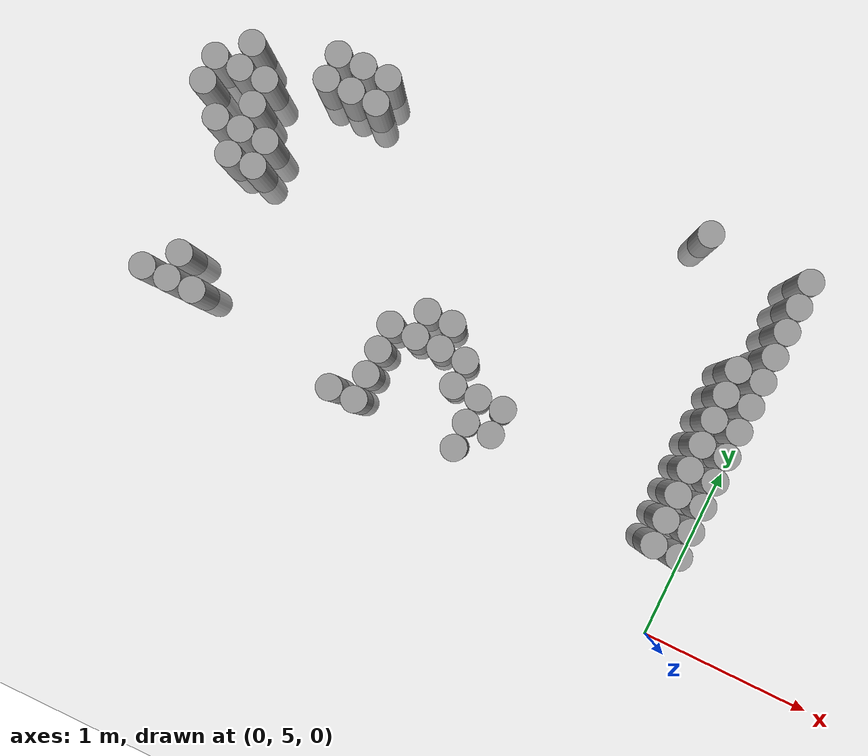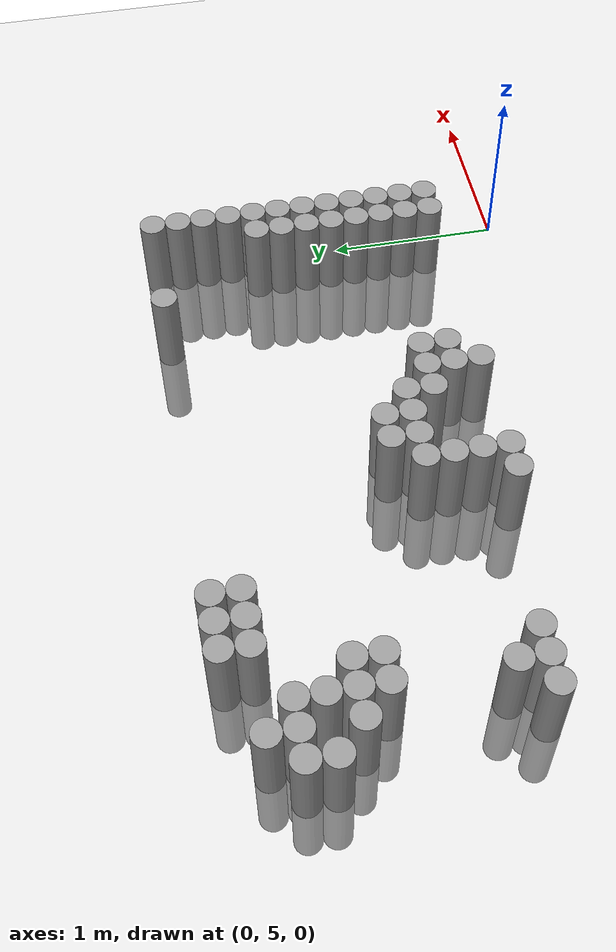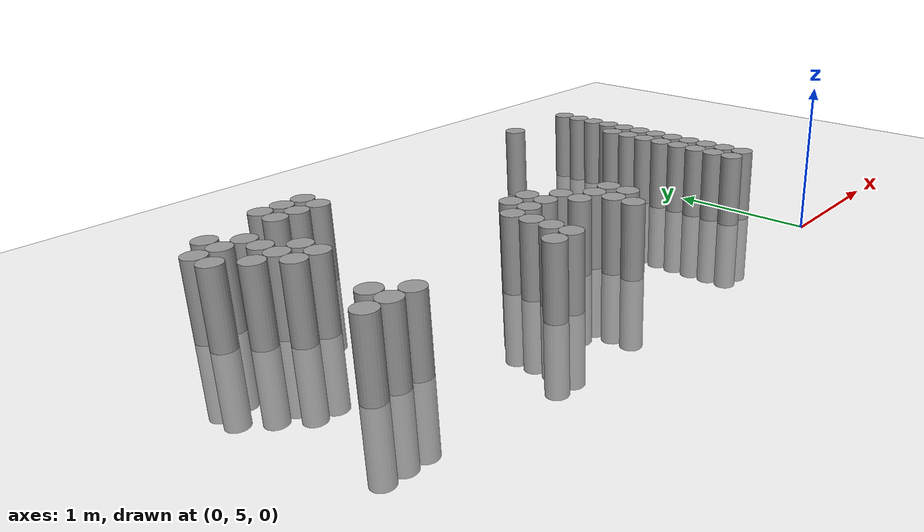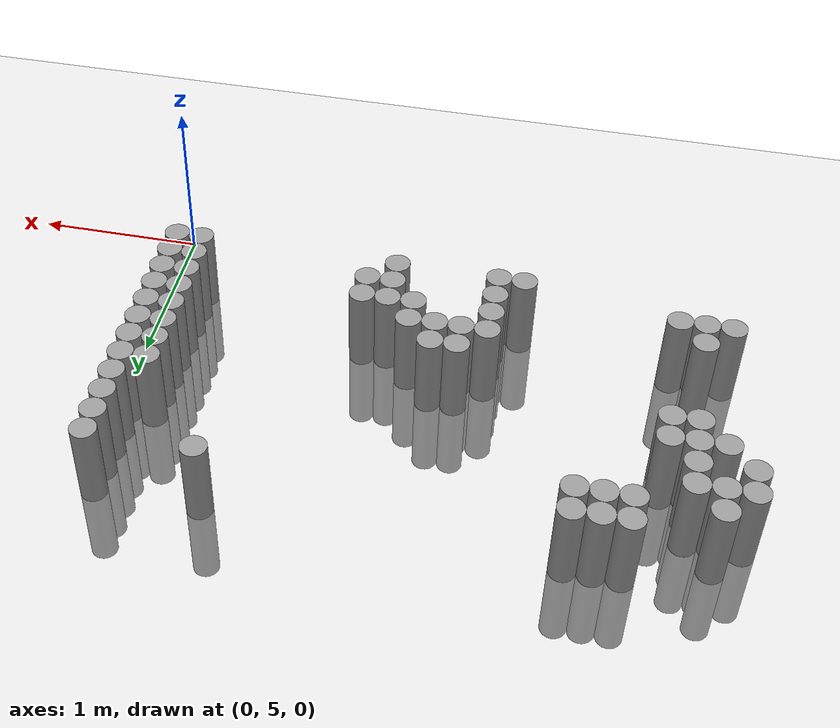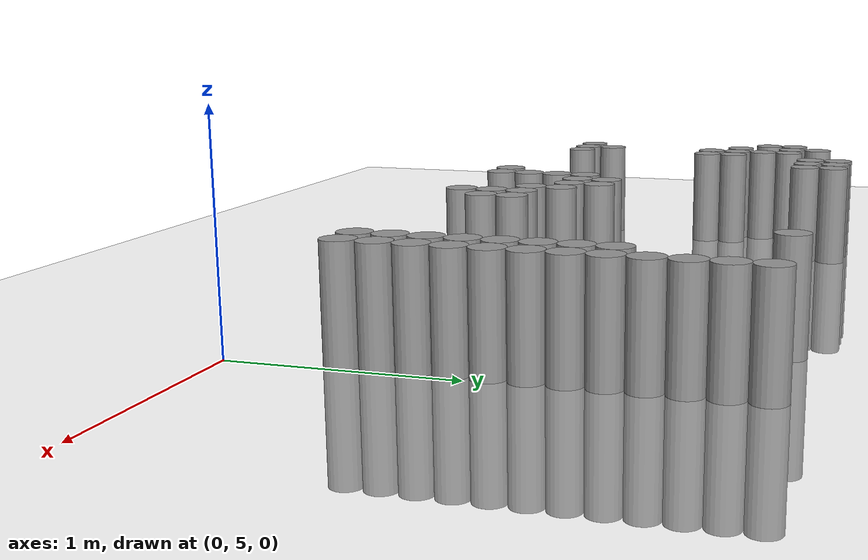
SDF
<sdf version="1.6">
 <world name="default">
  <model name="ground_plane">
   <static>1</static>
   <static>1</static>
   <link name="link">
    <collision name="collision">
     <geometry><plane><normal>0 0 1</normal><size>100 100</size></plane></geometry>
     <surface><friction><ode><mu>100</mu><mu2>50</mu2></ode></friction></surface>
    </collision>
    <visual name="visual">
     <cast_shadows>0</cast_shadows>
     <geometry><plane><normal>0 0 1</normal><size>100 100</size></plane></geometry>
     <material>
      <script><uri>file://media/materials/scripts/gazebo.material</uri><name>Gazebo/Grey</name></script>
     </material>
    </visual>
   </link>
  </model>
  <model name="unit_cylinder_164">
   <static>1</static>
   <pose>-3.525000 6.675000 0.000000 0.000000 0.000000 0.000000</pose>
   <link name="link">
    <inertial>
     <mass>1</mass>
     <inertia><ixx>0.145833</ixx><ixy>0</ixy><ixz>0</ixz><iyy>0.145833</iyy><iyz>0</iyz><izz>0.125</izz></inertia>
    </inertial>
    <collision name="collision">
     <geometry><cylinder><radius>0.075000</radius><length>1</length></cylinder></geometry>
    </collision>
    <visual name="visual">
     <geometry><cylinder><radius>0.075000</radius><length>1</length></cylinder></geometry>
     <material>
      <script><name>Gazebo/Grey</name><uri>file://media/materials/scripts/gazebo.material</uri></script>
     </material>
    </visual>
   </link>
  </model>
  <model name="unit_cylinder_165">
   <static>1</static>
   <pose>-3.525000 6.825000 0.000000 0.000000 0.000000 0.000000</pose>
   <link name="link">
    <inertial>
     <mass>1</mass>
     <inertia><ixx>0.145833</ixx><ixy>0</ixy><ixz>0</ixz><iyy>0.145833</iyy><iyz>0</iyz><izz>0.125</izz></inertia>
    </inertial>
    <collision name="collision">
     <geometry><cylinder><radius>0.075000</radius><length>1</length></cylinder></geometry>
    </collision>
    <visual name="visual">
     <geometry><cylinder><radius>0.075000</radius><length>1</length></cylinder></geometry>
     <material>
      <script><name>Gazebo/Grey</name><uri>file://media/materials/scripts/gazebo.material</uri></script>
     </material>
    </visual>
   </link>
  </model>
  <model name="unit_cylinder_168">
   <static>1</static>
   <pose>-3.375000 5.625000 0.000000 0.000000 0.000000 0.000000</pose>
   <link name="link">
    <inertial>
     <mass>1</mass>
     <inertia><ixx>0.145833</ixx><ixy>0</ixy><ixz>0</ixz><iyy>0.145833</iyy><iyz>0</iyz><izz>0.125</izz></inertia>
    </inertial>
    <collision name="collision">
     <geometry><cylinder><radius>0.075000</radius><length>1</length></cylinder></geometry>
    </collision>
    <visual name="visual">
     <geometry><cylinder><radius>0.075000</radius><length>1</length></cylinder></geometry>
     <material>
      <script><name>Gazebo/Grey</name><uri>file://media/materials/scripts/gazebo.material</uri></script>
     </material>
    </visual>
   </link>
  </model>
  <model name="unit_cylinder_169">
   <static>1</static>
   <pose>-3.375000 6.525000 0.000000 0.000000 0.000000 0.000000</pose>
   <link name="link">
    <inertial>
     <mass>1</mass>
     <inertia><ixx>0.145833</ixx><ixy>0</ixy><ixz>0</ixz><iyy>0.145833</iyy><iyz>0</iyz><izz>0.125</izz></inertia>
    </inertial>
    <collision name="collision">
     <geometry><cylinder><radius>0.075000</radius><length>1</length></cylinder></geometry>
    </collision>
    <visual name="visual">
     <geometry><cylinder><radius>0.075000</radius><length>1</length></cylinder></geometry>
     <material>
      <script><name>Gazebo/Grey</name><uri>file://media/materials/scripts/gazebo.material</uri></script>
     </material>
    </visual>
   </link>
  </model>
  <model name="unit_cylinder_170">
   <static>1</static>
   <pose>-3.375000 6.825000 0.000000 0.000000 0.000000 0.000000</pose>
   <link name="link">
    <inertial>
     <mass>1</mass>
     <inertia><ixx>0.145833</ixx><ixy>0</ixy><ixz>0</ixz><iyy>0.145833</iyy><iyz>0</iyz><izz>0.125</izz></inertia>
    </inertial>
    <collision name="collision">
     <geometry><cylinder><radius>0.075000</radius><length>1</length></cylinder></geometry>
    </collision>
    <visual name="visual">
     <geometry><cylinder><radius>0.075000</radius><length>1</length></cylinder></geometry>
     <material>
      <script><name>Gazebo/Grey</name><uri>file://media/materials/scripts/gazebo.material</uri></script>
     </material>
    </visual>
   </link>
  </model>
  <model name="unit_cylinder_171">
   <static>1</static>
   <pose>-3.375000 6.975000 0.000000 0.000000 0.000000 0.000000</pose>
   <link name="link">
    <inertial>
     <mass>1</mass>
     <inertia><ixx>0.145833</ixx><ixy>0</ixy><ixz>0</ixz><iyy>0.145833</iyy><iyz>0</iyz><izz>0.125</izz></inertia>
    </inertial>
    <collision name="collision">
     <geometry><cylinder><radius>0.075000</radius><length>1</length></cylinder></geometry>
    </collision>
    <visual name="visual">
     <geometry><cylinder><radius>0.075000</radius><length>1</length></cylinder></geometry>
     <material>
      <script><name>Gazebo/Grey</name><uri>file://media/materials/scripts/gazebo.material</uri></script>
     </material>
    </visual>
   </link>
  </model>
  <model name="unit_cylinder_173">
   <static>1</static>
   <pose>-3.225000 5.625000 0.000000 0.000000 0.000000 0.000000</pose>
   <link name="link">
    <inertial>
     <mass>1</mass>
     <inertia><ixx>0.145833</ixx><ixy>0</ixy><ixz>0</ixz><iyy>0.145833</iyy><iyz>0</iyz><izz>0.125</izz></inertia>
    </inertial>
    <collision name="collision">
     <geometry><cylinder><radius>0.075000</radius><length>1</length></cylinder></geometry>
    </collision>
    <visual name="visual">
     <geometry><cylinder><radius>0.075000</radius><length>1</length></cylinder></geometry>
     <material>
      <script><name>Gazebo/Grey</name><uri>file://media/materials/scripts/gazebo.material</uri></script>
     </material>
    </visual>
   </link>
  </model>
  <model name="unit_cylinder_174">
   <static>1</static>
   <pose>-3.225000 5.775000 0.000000 0.000000 0.000000 0.000000</pose>
   <link name="link">
    <inertial>
     <mass>1</mass>
     <inertia><ixx>0.145833</ixx><ixy>0</ixy><ixz>0</ixz><iyy>0.145833</iyy><iyz>0</iyz><izz>0.125</izz></inertia>
    </inertial>
    <collision name="collision">
     <geometry><cylinder><radius>0.075000</radius><length>1</length></cylinder></geometry>
    </collision>
    <visual name="visual">
     <geometry><cylinder><radius>0.075000</radius><length>1</length></cylinder></geometry>
     <material>
      <script><name>Gazebo/Grey</name><uri>file://media/materials/scripts/gazebo.material</uri></script>
     </material>
    </visual>
   </link>
  </model>
  <model name="unit_cylinder_175">
   <static>1</static>
   <pose>-3.225000 6.375000 0.000000 0.000000 0.000000 0.000000</pose>
   <link name="link">
    <inertial>
     <mass>1</mass>
     <inertia><ixx>0.145833</ixx><ixy>0</ixy><ixz>0</ixz><iyy>0.145833</iyy><iyz>0</iyz><izz>0.125</izz></inertia>
    </inertial>
    <collision name="collision">
     <geometry><cylinder><radius>0.075000</radius><length>1</length></cylinder></geometry>
    </collision>
    <visual name="visual">
     <geometry><cylinder><radius>0.075000</radius><length>1</length></cylinder></geometry>
     <material>
      <script><name>Gazebo/Grey</name><uri>file://media/materials/scripts/gazebo.material</uri></script>
     </material>
    </visual>
   </link>
  </model>
  <model name="unit_cylinder_176">
   <static>1</static>
   <pose>-3.225000 6.525000 0.000000 0.000000 0.000000 0.000000</pose>
   <link name="link">
    <inertial>
     <mass>1</mass>
     <inertia><ixx>0.145833</ixx><ixy>0</ixy><ixz>0</ixz><iyy>0.145833</iyy><iyz>0</iyz><izz>0.125</izz></inertia>
    </inertial>
    <collision name="collision">
     <geometry><cylinder><radius>0.075000</radius><length>1</length></cylinder></geometry>
    </collision>
    <visual name="visual">
     <geometry><cylinder><radius>0.075000</radius><length>1</length></cylinder></geometry>
     <material>
      <script><name>Gazebo/Grey</name><uri>file://media/materials/scripts/gazebo.material</uri></script>
     </material>
    </visual>
   </link>
  </model>
  <model name="unit_cylinder_177">
   <static>1</static>
   <pose>-3.225000 6.675000 0.000000 0.000000 0.000000 0.000000</pose>
   <link name="link">
    <inertial>
     <mass>1</mass>
     <inertia><ixx>0.145833</ixx><ixy>0</ixy><ixz>0</ixz><iyy>0.145833</iyy><iyz>0</iyz><izz>0.125</izz></inertia>
    </inertial>
    <collision name="collision">
     <geometry><cylinder><radius>0.075000</radius><length>1</length></cylinder></geometry>
    </collision>
    <visual name="visual">
     <geometry><cylinder><radius>0.075000</radius><length>1</length></cylinder></geometry>
     <material>
      <script><name>Gazebo/Grey</name><uri>file://media/materials/scripts/gazebo.material</uri></script>
     </material>
    </visual>
   </link>
  </model>
  <model name="unit_cylinder_178">
   <static>1</static>
   <pose>-3.225000 6.825000 0.000000 0.000000 0.000000 0.000000</pose>
   <link name="link">
    <inertial>
     <mass>1</mass>
     <inertia><ixx>0.145833</ixx><ixy>0</ixy><ixz>0</ixz><iyy>0.145833</iyy><iyz>0</iyz><izz>0.125</izz></inertia>
    </inertial>
    <collision name="collision">
     <geometry><cylinder><radius>0.075000</radius><length>1</length></cylinder></geometry>
    </collision>
    <visual name="visual">
     <geometry><cylinder><radius>0.075000</radius><length>1</length></cylinder></geometry>
     <material>
      <script><name>Gazebo/Grey</name><uri>file://media/materials/scripts/gazebo.material</uri></script>
     </material>
    </visual>
   </link>
  </model>
  <model name="unit_cylinder_179">
   <static>1</static>
   <pose>-3.075000 5.625000 0.000000 0.000000 0.000000 0.000000</pose>
   <link name="link">
    <inertial>
     <mass>1</mass>
     <inertia><ixx>0.145833</ixx><ixy>0</ixy><ixz>0</ixz><iyy>0.145833</iyy><iyz>0</iyz><izz>0.125</izz></inertia>
    </inertial>
    <collision name="collision">
     <geometry><cylinder><radius>0.075000</radius><length>1</length></cylinder></geometry>
    </collision>
    <visual name="visual">
     <geometry><cylinder><radius>0.075000</radius><length>1</length></cylinder></geometry>
     <material>
      <script><name>Gazebo/Grey</name><uri>file://media/materials/scripts/gazebo.material</uri></script>
     </material>
    </visual>
   </link>
  </model>
  <model name="unit_cylinder_180">
   <static>1</static>
   <pose>-3.075000 6.375000 0.000000 0.000000 0.000000 0.000000</pose>
   <link name="link">
    <inertial>
     <mass>1</mass>
     <inertia><ixx>0.145833</ixx><ixy>0</ixy><ixz>0</ixz><iyy>0.145833</iyy><iyz>0</iyz><izz>0.125</izz></inertia>
    </inertial>
    <collision name="collision">
     <geometry><cylinder><radius>0.075000</radius><length>1</length></cylinder></geometry>
    </collision>
    <visual name="visual">
     <geometry><cylinder><radius>0.075000</radius><length>1</length></cylinder></geometry>
     <material>
      <script><name>Gazebo/Grey</name><uri>file://media/materials/scripts/gazebo.material</uri></script>
     </material>
    </visual>
   </link>
  </model>
  <model name="unit_cylinder_181">
   <static>1</static>
   <pose>-3.075000 6.525000 0.000000 0.000000 0.000000 0.000000</pose>
   <link name="link">
    <inertial>
     <mass>1</mass>
     <inertia><ixx>0.145833</ixx><ixy>0</ixy><ixz>0</ixz><iyy>0.145833</iyy><iyz>0</iyz><izz>0.125</izz></inertia>
    </inertial>
    <collision name="collision">
     <geometry><cylinder><radius>0.075000</radius><length>1</length></cylinder></geometry>
    </collision>
    <visual name="visual">
     <geometry><cylinder><radius>0.075000</radius><length>1</length></cylinder></geometry>
     <material>
      <script><name>Gazebo/Grey</name><uri>file://media/materials/scripts/gazebo.material</uri></script>
     </material>
    </visual>
   </link>
  </model>
  <model name="unit_cylinder_182">
   <static>1</static>
   <pose>-2.925000 6.975000 0.000000 0.000000 0.000000 0.000000</pose>
   <link name="link">
    <inertial>
     <mass>1</mass>
     <inertia><ixx>0.145833</ixx><ixy>0</ixy><ixz>0</ixz><iyy>0.145833</iyy><iyz>0</iyz><izz>0.125</izz></inertia>
    </inertial>
    <collision name="collision">
     <geometry><cylinder><radius>0.075000</radius><length>1</length></cylinder></geometry>
    </collision>
    <visual name="visual">
     <geometry><cylinder><radius>0.075000</radius><length>1</length></cylinder></geometry>
     <material>
      <script><name>Gazebo/Grey</name><uri>file://media/materials/scripts/gazebo.material</uri></script>
     </material>
    </visual>
   </link>
  </model>
  <model name="unit_cylinder_183">
   <static>1</static>
   <pose>-2.925000 7.125000 0.000000 0.000000 0.000000 0.000000</pose>
   <link name="link">
    <inertial>
     <mass>1</mass>
     <inertia><ixx>0.145833</ixx><ixy>0</ixy><ixz>0</ixz><iyy>0.145833</iyy><iyz>0</iyz><izz>0.125</izz></inertia>
    </inertial>
    <collision name="collision">
     <geometry><cylinder><radius>0.075000</radius><length>1</length></cylinder></geometry>
    </collision>
    <visual name="visual">
     <geometry><cylinder><radius>0.075000</radius><length>1</length></cylinder></geometry>
     <material>
      <script><name>Gazebo/Grey</name><uri>file://media/materials/scripts/gazebo.material</uri></script>
     </material>
    </visual>
   </link>
  </model>
  <model name="unit_cylinder_184">
   <static>1</static>
   <pose>-2.775000 6.975000 0.000000 0.000000 0.000000 0.000000</pose>
   <link name="link">
    <inertial>
     <mass>1</mass>
     <inertia><ixx>0.145833</ixx><ixy>0</ixy><ixz>0</ixz><iyy>0.145833</iyy><iyz>0</iyz><izz>0.125</izz></inertia>
    </inertial>
    <collision name="collision">
     <geometry><cylinder><radius>0.075000</radius><length>1</length></cylinder></geometry>
    </collision>
    <visual name="visual">
     <geometry><cylinder><radius>0.075000</radius><length>1</length></cylinder></geometry>
     <material>
      <script><name>Gazebo/Grey</name><uri>file://media/materials/scripts/gazebo.material</uri></script>
     </material>
    </visual>
   </link>
  </model>
  <model name="unit_cylinder_185">
   <static>1</static>
   <pose>-2.775000 7.125000 0.000000 0.000000 0.000000 0.000000</pose>
   <link name="link">
    <inertial>
     <mass>1</mass>
     <inertia><ixx>0.145833</ixx><ixy>0</ixy><ixz>0</ixz><iyy>0.145833</iyy><iyz>0</iyz><izz>0.125</izz></inertia>
    </inertial>
    <collision name="collision">
     <geometry><cylinder><radius>0.075000</radius><length>1</length></cylinder></geometry>
    </collision>
    <visual name="visual">
     <geometry><cylinder><radius>0.075000</radius><length>1</length></cylinder></geometry>
     <material>
      <script><name>Gazebo/Grey</name><uri>file://media/materials/scripts/gazebo.material</uri></script>
     </material>
    </visual>
   </link>
  </model>
  <model name="unit_cylinder_189">
   <static>1</static>
   <pose>-2.625000 6.975000 0.000000 0.000000 0.000000 0.000000</pose>
   <link name="link">
    <inertial>
     <mass>1</mass>
     <inertia><ixx>0.145833</ixx><ixy>0</ixy><ixz>0</ixz><iyy>0.145833</iyy><iyz>0</iyz><izz>0.125</izz></inertia>
    </inertial>
    <collision name="collision">
     <geometry><cylinder><radius>0.075000</radius><length>1</length></cylinder></geometry>
    </collision>
    <visual name="visual">
     <geometry><cylinder><radius>0.075000</radius><length>1</length></cylinder></geometry>
     <material>
      <script><name>Gazebo/Grey</name><uri>file://media/materials/scripts/gazebo.material</uri></script>
     </material>
    </visual>
   </link>
  </model>
  <model name="unit_cylinder_190">
   <static>1</static>
   <pose>-2.625000 7.125000 0.000000 0.000000 0.000000 0.000000</pose>
   <link name="link">
    <inertial>
     <mass>1</mass>
     <inertia><ixx>0.145833</ixx><ixy>0</ixy><ixz>0</ixz><iyy>0.145833</iyy><iyz>0</iyz><izz>0.125</izz></inertia>
    </inertial>
    <collision name="collision">
     <geometry><cylinder><radius>0.075000</radius><length>1</length></cylinder></geometry>
    </collision>
    <visual name="visual">
     <geometry><cylinder><radius>0.075000</radius><length>1</length></cylinder></geometry>
     <material>
      <script><name>Gazebo/Grey</name><uri>file://media/materials/scripts/gazebo.material</uri></script>
     </material>
    </visual>
   </link>
  </model>
  <model name="unit_cylinder_193">
   <static>1</static>
   <pose>-2.175000 5.475000 0.000000 0.000000 0.000000 0.000000</pose>
   <link name="link">
    <inertial>
     <mass>1</mass>
     <inertia><ixx>0.145833</ixx><ixy>0</ixy><ixz>0</ixz><iyy>0.145833</iyy><iyz>0</iyz><izz>0.125</izz></inertia>
    </inertial>
    <collision name="collision">
     <geometry><cylinder><radius>0.075000</radius><length>1</length></cylinder></geometry>
    </collision>
    <visual name="visual">
     <geometry><cylinder><radius>0.075000</radius><length>1</length></cylinder></geometry>
     <material>
      <script><name>Gazebo/Grey</name><uri>file://media/materials/scripts/gazebo.material</uri></script>
     </material>
    </visual>
   </link>
  </model>
  <model name="unit_cylinder_195">
   <static>1</static>
   <pose>-2.025000 5.475000 0.000000 0.000000 0.000000 0.000000</pose>
   <link name="link">
    <inertial>
     <mass>1</mass>
     <inertia><ixx>0.145833</ixx><ixy>0</ixy><ixz>0</ixz><iyy>0.145833</iyy><iyz>0</iyz><izz>0.125</izz></inertia>
    </inertial>
    <collision name="collision">
     <geometry><cylinder><radius>0.075000</radius><length>1</length></cylinder></geometry>
    </collision>
    <visual name="visual">
     <geometry><cylinder><radius>0.075000</radius><length>1</length></cylinder></geometry>
     <material>
      <script><name>Gazebo/Grey</name><uri>file://media/materials/scripts/gazebo.material</uri></script>
     </material>
    </visual>
   </link>
  </model>
  <model name="unit_cylinder_196">
   <static>1</static>
   <pose>-2.025000 5.625000 0.000000 0.000000 0.000000 0.000000</pose>
   <link name="link">
    <inertial>
     <mass>1</mass>
     <inertia><ixx>0.145833</ixx><ixy>0</ixy><ixz>0</ixz><iyy>0.145833</iyy><iyz>0</iyz><izz>0.125</izz></inertia>
    </inertial>
    <collision name="collision">
     <geometry><cylinder><radius>0.075000</radius><length>1</length></cylinder></geometry>
    </collision>
    <visual name="visual">
     <geometry><cylinder><radius>0.075000</radius><length>1</length></cylinder></geometry>
     <material>
      <script><name>Gazebo/Grey</name><uri>file://media/materials/scripts/gazebo.material</uri></script>
     </material>
    </visual>
   </link>
  </model>
  <model name="unit_cylinder_197">
   <static>1</static>
   <pose>-2.025000 5.775000 0.000000 0.000000 0.000000 0.000000</pose>
   <link name="link">
    <inertial>
     <mass>1</mass>
     <inertia><ixx>0.145833</ixx><ixy>0</ixy><ixz>0</ixz><iyy>0.145833</iyy><iyz>0</iyz><izz>0.125</izz></inertia>
    </inertial>
    <collision name="collision">
     <geometry><cylinder><radius>0.075000</radius><length>1</length></cylinder></geometry>
    </collision>
    <visual name="visual">
     <geometry><cylinder><radius>0.075000</radius><length>1</length></cylinder></geometry>
     <material>
      <script><name>Gazebo/Grey</name><uri>file://media/materials/scripts/gazebo.material</uri></script>
     </material>
    </visual>
   </link>
  </model>
  <model name="unit_cylinder_198">
   <static>1</static>
   <pose>-2.025000 5.925000 0.000000 0.000000 0.000000 0.000000</pose>
   <link name="link">
    <inertial>
     <mass>1</mass>
     <inertia><ixx>0.145833</ixx><ixy>0</ixy><ixz>0</ixz><iyy>0.145833</iyy><iyz>0</iyz><izz>0.125</izz></inertia>
    </inertial>
    <collision name="collision">
     <geometry><cylinder><radius>0.075000</radius><length>1</length></cylinder></geometry>
    </collision>
    <visual name="visual">
     <geometry><cylinder><radius>0.075000</radius><length>1</length></cylinder></geometry>
     <material>
      <script><name>Gazebo/Grey</name><uri>file://media/materials/scripts/gazebo.material</uri></script>
     </material>
    </visual>
   </link>
  </model>
  <model name="unit_cylinder_200">
   <static>1</static>
   <pose>-1.875000 5.925000 0.000000 0.000000 0.000000 0.000000</pose>
   <link name="link">
    <inertial>
     <mass>1</mass>
     <inertia><ixx>0.145833</ixx><ixy>0</ixy><ixz>0</ixz><iyy>0.145833</iyy><iyz>0</iyz><izz>0.125</izz></inertia>
    </inertial>
    <collision name="collision">
     <geometry><cylinder><radius>0.075000</radius><length>1</length></cylinder></geometry>
    </collision>
    <visual name="visual">
     <geometry><cylinder><radius>0.075000</radius><length>1</length></cylinder></geometry>
     <material>
      <script><name>Gazebo/Grey</name><uri>file://media/materials/scripts/gazebo.material</uri></script>
     </material>
    </visual>
   </link>
  </model>
  <model name="unit_cylinder_201">
   <static>1</static>
   <pose>-1.875000 6.075000 0.000000 0.000000 0.000000 0.000000</pose>
   <link name="link">
    <inertial>
     <mass>1</mass>
     <inertia><ixx>0.145833</ixx><ixy>0</ixy><ixz>0</ixz><iyy>0.145833</iyy><iyz>0</iyz><izz>0.125</izz></inertia>
    </inertial>
    <collision name="collision">
     <geometry><cylinder><radius>0.075000</radius><length>1</length></cylinder></geometry>
    </collision>
    <visual name="visual">
     <geometry><cylinder><radius>0.075000</radius><length>1</length></cylinder></geometry>
     <material>
      <script><name>Gazebo/Grey</name><uri>file://media/materials/scripts/gazebo.material</uri></script>
     </material>
    </visual>
   </link>
  </model>
  <model name="unit_cylinder_203">
   <static>1</static>
   <pose>-1.725000 5.925000 0.000000 0.000000 0.000000 0.000000</pose>
   <link name="link">
    <inertial>
     <mass>1</mass>
     <inertia><ixx>0.145833</ixx><ixy>0</ixy><ixz>0</ixz><iyy>0.145833</iyy><iyz>0</iyz><izz>0.125</izz></inertia>
    </inertial>
    <collision name="collision">
     <geometry><cylinder><radius>0.075000</radius><length>1</length></cylinder></geometry>
    </collision>
    <visual name="visual">
     <geometry><cylinder><radius>0.075000</radius><length>1</length></cylinder></geometry>
     <material>
      <script><name>Gazebo/Grey</name><uri>file://media/materials/scripts/gazebo.material</uri></script>
     </material>
    </visual>
   </link>
  </model>
  <model name="unit_cylinder_204">
   <static>1</static>
   <pose>-1.725000 6.075000 0.000000 0.000000 0.000000 0.000000</pose>
   <link name="link">
    <inertial>
     <mass>1</mass>
     <inertia><ixx>0.145833</ixx><ixy>0</ixy><ixz>0</ixz><iyy>0.145833</iyy><iyz>0</iyz><izz>0.125</izz></inertia>
    </inertial>
    <collision name="collision">
     <geometry><cylinder><radius>0.075000</radius><length>1</length></cylinder></geometry>
    </collision>
    <visual name="visual">
     <geometry><cylinder><radius>0.075000</radius><length>1</length></cylinder></geometry>
     <material>
      <script><name>Gazebo/Grey</name><uri>file://media/materials/scripts/gazebo.material</uri></script>
     </material>
    </visual>
   </link>
  </model>
  <model name="unit_cylinder_209">
   <static>1</static>
   <pose>-1.575000 5.775000 0.000000 0.000000 0.000000 0.000000</pose>
   <link name="link">
    <inertial>
     <mass>1</mass>
     <inertia><ixx>0.145833</ixx><ixy>0</ixy><ixz>0</ixz><iyy>0.145833</iyy><iyz>0</iyz><izz>0.125</izz></inertia>
    </inertial>
    <collision name="collision">
     <geometry><cylinder><radius>0.075000</radius><length>1</length></cylinder></geometry>
    </collision>
    <visual name="visual">
     <geometry><cylinder><radius>0.075000</radius><length>1</length></cylinder></geometry>
     <material>
      <script><name>Gazebo/Grey</name><uri>file://media/materials/scripts/gazebo.material</uri></script>
     </material>
    </visual>
   </link>
  </model>
  <model name="unit_cylinder_210">
   <static>1</static>
   <pose>-1.575000 5.925000 0.000000 0.000000 0.000000 0.000000</pose>
   <link name="link">
    <inertial>
     <mass>1</mass>
     <inertia><ixx>0.145833</ixx><ixy>0</ixy><ixz>0</ixz><iyy>0.145833</iyy><iyz>0</iyz><izz>0.125</izz></inertia>
    </inertial>
    <collision name="collision">
     <geometry><cylinder><radius>0.075000</radius><length>1</length></cylinder></geometry>
    </collision>
    <visual name="visual">
     <geometry><cylinder><radius>0.075000</radius><length>1</length></cylinder></geometry>
     <material>
      <script><name>Gazebo/Grey</name><uri>file://media/materials/scripts/gazebo.material</uri></script>
     </material>
    </visual>
   </link>
  </model>
  <model name="unit_cylinder_216">
   <static>1</static>
   <pose>-1.425000 5.475000 0.000000 0.000000 0.000000 0.000000</pose>
   <link name="link">
    <inertial>
     <mass>1</mass>
     <inertia><ixx>0.145833</ixx><ixy>0</ixy><ixz>0</ixz><iyy>0.145833</iyy><iyz>0</iyz><izz>0.125</izz></inertia>
    </inertial>
    <collision name="collision">
     <geometry><cylinder><radius>0.075000</radius><length>1</length></cylinder></geometry>
    </collision>
    <visual name="visual">
     <geometry><cylinder><radius>0.075000</radius><length>1</length></cylinder></geometry>
     <material>
      <script><name>Gazebo/Grey</name><uri>file://media/materials/scripts/gazebo.material</uri></script>
     </material>
    </visual>
   </link>
  </model>
  <model name="unit_cylinder_217">
   <static>1</static>
   <pose>-1.425000 5.625000 0.000000 0.000000 0.000000 0.000000</pose>
   <link name="link">
    <inertial>
     <mass>1</mass>
     <inertia><ixx>0.145833</ixx><ixy>0</ixy><ixz>0</ixz><iyy>0.145833</iyy><iyz>0</iyz><izz>0.125</izz></inertia>
    </inertial>
    <collision name="collision">
     <geometry><cylinder><radius>0.075000</radius><length>1</length></cylinder></geometry>
    </collision>
    <visual name="visual">
     <geometry><cylinder><radius>0.075000</radius><length>1</length></cylinder></geometry>
     <material>
      <script><name>Gazebo/Grey</name><uri>file://media/materials/scripts/gazebo.material</uri></script>
     </material>
    </visual>
   </link>
  </model>
  <model name="unit_cylinder_218">
   <static>1</static>
   <pose>-1.425000 5.775000 0.000000 0.000000 0.000000 0.000000</pose>
   <link name="link">
    <inertial>
     <mass>1</mass>
     <inertia><ixx>0.145833</ixx><ixy>0</ixy><ixz>0</ixz><iyy>0.145833</iyy><iyz>0</iyz><izz>0.125</izz></inertia>
    </inertial>
    <collision name="collision">
     <geometry><cylinder><radius>0.075000</radius><length>1</length></cylinder></geometry>
    </collision>
    <visual name="visual">
     <geometry><cylinder><radius>0.075000</radius><length>1</length></cylinder></geometry>
     <material>
      <script><name>Gazebo/Grey</name><uri>file://media/materials/scripts/gazebo.material</uri></script>
     </material>
    </visual>
   </link>
  </model>
  <model name="unit_cylinder_223">
   <static>1</static>
   <pose>-1.275000 5.625000 0.000000 0.000000 0.000000 0.000000</pose>
   <link name="link">
    <inertial>
     <mass>1</mass>
     <inertia><ixx>0.145833</ixx><ixy>0</ixy><ixz>0</ixz><iyy>0.145833</iyy><iyz>0</iyz><izz>0.125</izz></inertia>
    </inertial>
    <collision name="collision">
     <geometry><cylinder><radius>0.075000</radius><length>1</length></cylinder></geometry>
    </collision>
    <visual name="visual">
     <geometry><cylinder><radius>0.075000</radius><length>1</length></cylinder></geometry>
     <material>
      <script><name>Gazebo/Grey</name><uri>file://media/materials/scripts/gazebo.material</uri></script>
     </material>
    </visual>
   </link>
  </model>
  <model name="unit_cylinder_224">
   <static>1</static>
   <pose>-1.275000 5.775000 0.000000 0.000000 0.000000 0.000000</pose>
   <link name="link">
    <inertial>
     <mass>1</mass>
     <inertia><ixx>0.145833</ixx><ixy>0</ixy><ixz>0</ixz><iyy>0.145833</iyy><iyz>0</iyz><izz>0.125</izz></inertia>
    </inertial>
    <collision name="collision">
     <geometry><cylinder><radius>0.075000</radius><length>1</length></cylinder></geometry>
    </collision>
    <visual name="visual">
     <geometry><cylinder><radius>0.075000</radius><length>1</length></cylinder></geometry>
     <material>
      <script><name>Gazebo/Grey</name><uri>file://media/materials/scripts/gazebo.material</uri></script>
     </material>
    </visual>
   </link>
  </model>
  <model name="unit_cylinder_237">
   <static>1</static>
   <pose>-0.675000 7.125000 0.000000 0.000000 0.000000 0.000000</pose>
   <link name="link">
    <inertial>
     <mass>1</mass>
     <inertia><ixx>0.145833</ixx><ixy>0</ixy><ixz>0</ixz><iyy>0.145833</iyy><iyz>0</iyz><izz>0.125</izz></inertia>
    </inertial>
    <collision name="collision">
     <geometry><cylinder><radius>0.075000</radius><length>1</length></cylinder></geometry>
    </collision>
    <visual name="visual">
     <geometry><cylinder><radius>0.075000</radius><length>1</length></cylinder></geometry>
     <material>
      <script><name>Gazebo/Grey</name><uri>file://media/materials/scripts/gazebo.material</uri></script>
     </material>
    </visual>
   </link>
  </model>
  <model name="unit_cylinder_245">
   <static>1</static>
   <pose>-0.225000 5.475000 0.000000 0.000000 0.000000 0.000000</pose>
   <link name="link">
    <inertial>
     <mass>1</mass>
     <inertia><ixx>0.145833</ixx><ixy>0</ixy><ixz>0</ixz><iyy>0.145833</iyy><iyz>0</iyz><izz>0.125</izz></inertia>
    </inertial>
    <collision name="collision">
     <geometry><cylinder><radius>0.075000</radius><length>1</length></cylinder></geometry>
    </collision>
    <visual name="visual">
     <geometry><cylinder><radius>0.075000</radius><length>1</length></cylinder></geometry>
     <material>
      <script><name>Gazebo/Grey</name><uri>file://media/materials/scripts/gazebo.material</uri></script>
     </material>
    </visual>
   </link>
  </model>
  <model name="unit_cylinder_246">
   <static>1</static>
   <pose>-0.225000 5.625000 0.000000 0.000000 0.000000 0.000000</pose>
   <link name="link">
    <inertial>
     <mass>1</mass>
     <inertia><ixx>0.145833</ixx><ixy>0</ixy><ixz>0</ixz><iyy>0.145833</iyy><iyz>0</iyz><izz>0.125</izz></inertia>
    </inertial>
    <collision name="collision">
     <geometry><cylinder><radius>0.075000</radius><length>1</length></cylinder></geometry>
    </collision>
    <visual name="visual">
     <geometry><cylinder><radius>0.075000</radius><length>1</length></cylinder></geometry>
     <material>
      <script><name>Gazebo/Grey</name><uri>file://media/materials/scripts/gazebo.material</uri></script>
     </material>
    </visual>
   </link>
  </model>
  <model name="unit_cylinder_247">
   <static>1</static>
   <pose>-0.225000 5.775000 0.000000 0.000000 0.000000 0.000000</pose>
   <link name="link">
    <inertial>
     <mass>1</mass>
     <inertia><ixx>0.145833</ixx><ixy>0</ixy><ixz>0</ixz><iyy>0.145833</iyy><iyz>0</iyz><izz>0.125</izz></inertia>
    </inertial>
    <collision name="collision">
     <geometry><cylinder><radius>0.075000</radius><length>1</length></cylinder></geometry>
    </collision>
    <visual name="visual">
     <geometry><cylinder><radius>0.075000</radius><length>1</length></cylinder></geometry>
     <material>
      <script><name>Gazebo/Grey</name><uri>file://media/materials/scripts/gazebo.material</uri></script>
     </material>
    </visual>
   </link>
  </model>
  <model name="unit_cylinder_248">
   <static>1</static>
   <pose>-0.225000 5.925000 0.000000 0.000000 0.000000 0.000000</pose>
   <link name="link">
    <inertial>
     <mass>1</mass>
     <inertia><ixx>0.145833</ixx><ixy>0</ixy><ixz>0</ixz><iyy>0.145833</iyy><iyz>0</iyz><izz>0.125</izz></inertia>
    </inertial>
    <collision name="collision">
     <geometry><cylinder><radius>0.075000</radius><length>1</length></cylinder></geometry>
    </collision>
    <visual name="visual">
     <geometry><cylinder><radius>0.075000</radius><length>1</length></cylinder></geometry>
     <material>
      <script><name>Gazebo/Grey</name><uri>file://media/materials/scripts/gazebo.material</uri></script>
     </material>
    </visual>
   </link>
  </model>
  <model name="unit_cylinder_249">
   <static>1</static>
   <pose>-0.225000 6.075000 0.000000 0.000000 0.000000 0.000000</pose>
   <link name="link">
    <inertial>
     <mass>1</mass>
     <inertia><ixx>0.145833</ixx><ixy>0</ixy><ixz>0</ixz><iyy>0.145833</iyy><iyz>0</iyz><izz>0.125</izz></inertia>
    </inertial>
    <collision name="collision">
     <geometry><cylinder><radius>0.075000</radius><length>1</length></cylinder></geometry>
    </collision>
    <visual name="visual">
     <geometry><cylinder><radius>0.075000</radius><length>1</length></cylinder></geometry>
     <material>
      <script><name>Gazebo/Grey</name><uri>file://media/materials/scripts/gazebo.material</uri></script>
     </material>
    </visual>
   </link>
  </model>
  <model name="unit_cylinder_250">
   <static>1</static>
   <pose>-0.225000 6.225000 0.000000 0.000000 0.000000 0.000000</pose>
   <link name="link">
    <inertial>
     <mass>1</mass>
     <inertia><ixx>0.145833</ixx><ixy>0</ixy><ixz>0</ixz><iyy>0.145833</iyy><iyz>0</iyz><izz>0.125</izz></inertia>
    </inertial>
    <collision name="collision">
     <geometry><cylinder><radius>0.075000</radius><length>1</length></cylinder></geometry>
    </collision>
    <visual name="visual">
     <geometry><cylinder><radius>0.075000</radius><length>1</length></cylinder></geometry>
     <material>
      <script><name>Gazebo/Grey</name><uri>file://media/materials/scripts/gazebo.material</uri></script>
     </material>
    </visual>
   </link>
  </model>
  <model name="unit_cylinder_251">
   <static>1</static>
   <pose>-0.225000 6.375000 0.000000 0.000000 0.000000 0.000000</pose>
   <link name="link">
    <inertial>
     <mass>1</mass>
     <inertia><ixx>0.145833</ixx><ixy>0</ixy><ixz>0</ixz><iyy>0.145833</iyy><iyz>0</iyz><izz>0.125</izz></inertia>
    </inertial>
    <collision name="collision">
     <geometry><cylinder><radius>0.075000</radius><length>1</length></cylinder></geometry>
    </collision>
    <visual name="visual">
     <geometry><cylinder><radius>0.075000</radius><length>1</length></cylinder></geometry>
     <material>
      <script><name>Gazebo/Grey</name><uri>file://media/materials/scripts/gazebo.material</uri></script>
     </material>
    </visual>
   </link>
  </model>
  <model name="unit_cylinder_252">
   <static>1</static>
   <pose>-0.225000 6.525000 0.000000 0.000000 0.000000 0.000000</pose>
   <link name="link">
    <inertial>
     <mass>1</mass>
     <inertia><ixx>0.145833</ixx><ixy>0</ixy><ixz>0</ixz><iyy>0.145833</iyy><iyz>0</iyz><izz>0.125</izz></inertia>
    </inertial>
    <collision name="collision">
     <geometry><cylinder><radius>0.075000</radius><length>1</length></cylinder></geometry>
    </collision>
    <visual name="visual">
     <geometry><cylinder><radius>0.075000</radius><length>1</length></cylinder></geometry>
     <material>
      <script><name>Gazebo/Grey</name><uri>file://media/materials/scripts/gazebo.material</uri></script>
     </material>
    </visual>
   </link>
  </model>
  <model name="unit_cylinder_263">
   <static>1</static>
   <pose>-0.075000 5.475000 0.000000 0.000000 0.000000 0.000000</pose>
   <link name="link">
    <inertial>
     <mass>1</mass>
     <inertia><ixx>0.145833</ixx><ixy>0</ixy><ixz>0</ixz><iyy>0.145833</iyy><iyz>0</iyz><izz>0.125</izz></inertia>
    </inertial>
    <collision name="collision">
     <geometry><cylinder><radius>0.075000</radius><length>1</length></cylinder></geometry>
    </collision>
    <visual name="visual">
     <geometry><cylinder><radius>0.075000</radius><length>1</length></cylinder></geometry>
     <material>
      <script><name>Gazebo/Grey</name><uri>file://media/materials/scripts/gazebo.material</uri></script>
     </material>
    </visual>
   </link>
  </model>
  <model name="unit_cylinder_264">
   <static>1</static>
   <pose>-0.075000 5.625000 0.000000 0.000000 0.000000 0.000000</pose>
   <link name="link">
    <inertial>
     <mass>1</mass>
     <inertia><ixx>0.145833</ixx><ixy>0</ixy><ixz>0</ixz><iyy>0.145833</iyy><iyz>0</iyz><izz>0.125</izz></inertia>
    </inertial>
    <collision name="collision">
     <geometry><cylinder><radius>0.075000</radius><length>1</length></cylinder></geometry>
    </collision>
    <visual name="visual">
     <geometry><cylinder><radius>0.075000</radius><length>1</length></cylinder></geometry>
     <material>
      <script><name>Gazebo/Grey</name><uri>file://media/materials/scripts/gazebo.material</uri></script>
     </material>
    </visual>
   </link>
  </model>
  <model name="unit_cylinder_265">
   <static>1</static>
   <pose>-0.075000 5.775000 0.000000 0.000000 0.000000 0.000000</pose>
   <link name="link">
    <inertial>
     <mass>1</mass>
     <inertia><ixx>0.145833</ixx><ixy>0</ixy><ixz>0</ixz><iyy>0.145833</iyy><iyz>0</iyz><izz>0.125</izz></inertia>
    </inertial>
    <collision name="collision">
     <geometry><cylinder><radius>0.075000</radius><length>1</length></cylinder></geometry>
    </collision>
    <visual name="visual">
     <geometry><cylinder><radius>0.075000</radius><length>1</length></cylinder></geometry>
     <material>
      <script><name>Gazebo/Grey</name><uri>file://media/materials/scripts/gazebo.material</uri></script>
     </material>
    </visual>
   </link>
  </model>
  <model name="unit_cylinder_266">
   <static>1</static>
   <pose>-0.075000 5.925000 0.000000 0.000000 0.000000 0.000000</pose>
   <link name="link">
    <inertial>
     <mass>1</mass>
     <inertia><ixx>0.145833</ixx><ixy>0</ixy><ixz>0</ixz><iyy>0.145833</iyy><iyz>0</iyz><izz>0.125</izz></inertia>
    </inertial>
    <collision name="collision">
     <geometry><cylinder><radius>0.075000</radius><length>1</length></cylinder></geometry>
    </collision>
    <visual name="visual">
     <geometry><cylinder><radius>0.075000</radius><length>1</length></cylinder></geometry>
     <material>
      <script><name>Gazebo/Grey</name><uri>file://media/materials/scripts/gazebo.material</uri></script>
     </material>
    </visual>
   </link>
  </model>
  <model name="unit_cylinder_267">
   <static>1</static>
   <pose>-0.075000 6.075000 0.000000 0.000000 0.000000 0.000000</pose>
   <link name="link">
    <inertial>
     <mass>1</mass>
     <inertia><ixx>0.145833</ixx><ixy>0</ixy><ixz>0</ixz><iyy>0.145833</iyy><iyz>0</iyz><izz>0.125</izz></inertia>
    </inertial>
    <collision name="collision">
     <geometry><cylinder><radius>0.075000</radius><length>1</length></cylinder></geometry>
    </collision>
    <visual name="visual">
     <geometry><cylinder><radius>0.075000</radius><length>1</length></cylinder></geometry>
     <material>
      <script><name>Gazebo/Grey</name><uri>file://media/materials/scripts/gazebo.material</uri></script>
     </material>
    </visual>
   </link>
  </model>
  <model name="unit_cylinder_268">
   <static>1</static>
   <pose>-0.075000 6.225000 0.000000 0.000000 0.000000 0.000000</pose>
   <link name="link">
    <inertial>
     <mass>1</mass>
     <inertia><ixx>0.145833</ixx><ixy>0</ixy><ixz>0</ixz><iyy>0.145833</iyy><iyz>0</iyz><izz>0.125</izz></inertia>
    </inertial>
    <collision name="collision">
     <geometry><cylinder><radius>0.075000</radius><length>1</length></cylinder></geometry>
    </collision>
    <visual name="visual">
     <geometry><cylinder><radius>0.075000</radius><length>1</length></cylinder></geometry>
     <material>
      <script><name>Gazebo/Grey</name><uri>file://media/materials/scripts/gazebo.material</uri></script>
     </material>
    </visual>
   </link>
  </model>
  <model name="unit_cylinder_269">
   <static>1</static>
   <pose>-0.075000 6.375000 0.000000 0.000000 0.000000 0.000000</pose>
   <link name="link">
    <inertial>
     <mass>1</mass>
     <inertia><ixx>0.145833</ixx><ixy>0</ixy><ixz>0</ixz><iyy>0.145833</iyy><iyz>0</iyz><izz>0.125</izz></inertia>
    </inertial>
    <collision name="collision">
     <geometry><cylinder><radius>0.075000</radius><length>1</length></cylinder></geometry>
    </collision>
    <visual name="visual">
     <geometry><cylinder><radius>0.075000</radius><length>1</length></cylinder></geometry>
     <material>
      <script><name>Gazebo/Grey</name><uri>file://media/materials/scripts/gazebo.material</uri></script>
     </material>
    </visual>
   </link>
  </model>
  <model name="unit_cylinder_270">
   <static>1</static>
   <pose>-0.075000 6.525000 0.000000 0.000000 0.000000 0.000000</pose>
   <link name="link">
    <inertial>
     <mass>1</mass>
     <inertia><ixx>0.145833</ixx><ixy>0</ixy><ixz>0</ixz><iyy>0.145833</iyy><iyz>0</iyz><izz>0.125</izz></inertia>
    </inertial>
    <collision name="collision">
     <geometry><cylinder><radius>0.075000</radius><length>1</length></cylinder></geometry>
    </collision>
    <visual name="visual">
     <geometry><cylinder><radius>0.075000</radius><length>1</length></cylinder></geometry>
     <material>
      <script><name>Gazebo/Grey</name><uri>file://media/materials/scripts/gazebo.material</uri></script>
     </material>
    </visual>
   </link>
  </model>
  <model name="unit_cylinder_271">
   <static>1</static>
   <pose>-0.075000 6.675000 0.000000 0.000000 0.000000 0.000000</pose>
   <link name="link">
    <inertial>
     <mass>1</mass>
     <inertia><ixx>0.145833</ixx><ixy>0</ixy><ixz>0</ixz><iyy>0.145833</iyy><iyz>0</iyz><izz>0.125</izz></inertia>
    </inertial>
    <collision name="collision">
     <geometry><cylinder><radius>0.075000</radius><length>1</length></cylinder></geometry>
    </collision>
    <visual name="visual">
     <geometry><cylinder><radius>0.075000</radius><length>1</length></cylinder></geometry>
     <material>
      <script><name>Gazebo/Grey</name><uri>file://media/materials/scripts/gazebo.material</uri></script>
     </material>
    </visual>
   </link>
  </model>
  <model name="unit_cylinder_272">
   <static>1</static>
   <pose>-0.075000 6.825000 0.000000 0.000000 0.000000 0.000000</pose>
   <link name="link">
    <inertial>
     <mass>1</mass>
     <inertia><ixx>0.145833</ixx><ixy>0</ixy><ixz>0</ixz><iyy>0.145833</iyy><iyz>0</iyz><izz>0.125</izz></inertia>
    </inertial>
    <collision name="collision">
     <geometry><cylinder><radius>0.075000</radius><length>1</length></cylinder></geometry>
    </collision>
    <visual name="visual">
     <geometry><cylinder><radius>0.075000</radius><length>1</length></cylinder></geometry>
     <material>
      <script><name>Gazebo/Grey</name><uri>file://media/materials/scripts/gazebo.material</uri></script>
     </material>
    </visual>
   </link>
  </model>
  <model name="unit_cylinder_273">
   <static>1</static>
   <pose>-0.075000 6.975000 0.000000 0.000000 0.000000 0.000000</pose>
   <link name="link">
    <inertial>
     <mass>1</mass>
     <inertia><ixx>0.145833</ixx><ixy>0</ixy><ixz>0</ixz><iyy>0.145833</iyy><iyz>0</iyz><izz>0.125</izz></inertia>
    </inertial>
    <collision name="collision">
     <geometry><cylinder><radius>0.075000</radius><length>1</length></cylinder></geometry>
    </collision>
    <visual name="visual">
     <geometry><cylinder><radius>0.075000</radius><length>1</length></cylinder></geometry>
     <material>
      <script><name>Gazebo/Grey</name><uri>file://media/materials/scripts/gazebo.material</uri></script>
     </material>
    </visual>
   </link>
  </model>
  <model name="unit_cylinder_274">
   <static>1</static>
   <pose>-0.075000 7.125000 0.000000 0.000000 0.000000 0.000000</pose>
   <link name="link">
    <inertial>
     <mass>1</mass>
     <inertia><ixx>0.145833</ixx><ixy>0</ixy><ixz>0</ixz><iyy>0.145833</iyy><iyz>0</iyz><izz>0.125</izz></inertia>
    </inertial>
    <collision name="collision">
     <geometry><cylinder><radius>0.075000</radius><length>1</length></cylinder></geometry>
    </collision>
    <visual name="visual">
     <geometry><cylinder><radius>0.075000</radius><length>1</length></cylinder></geometry>
     <material>
      <script><name>Gazebo/Grey</name><uri>file://media/materials/scripts/gazebo.material</uri></script>
     </material>
    </visual>
   </link>
  </model>
 </world>
</sdf>
